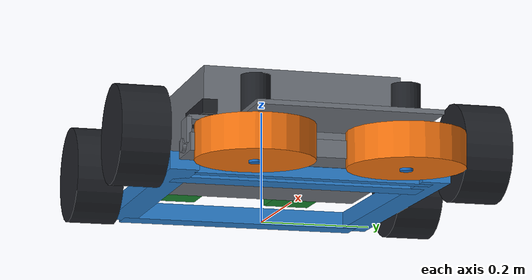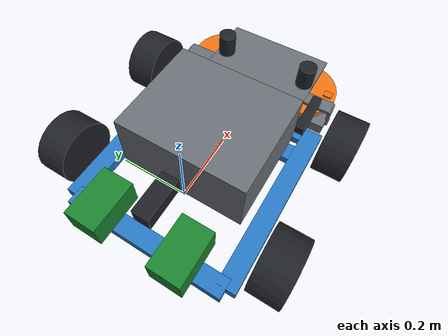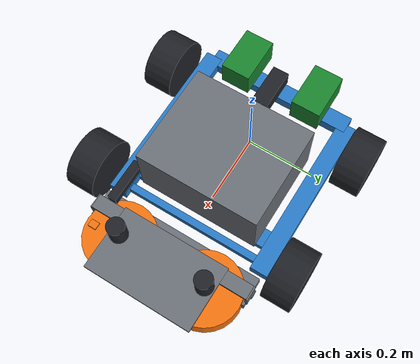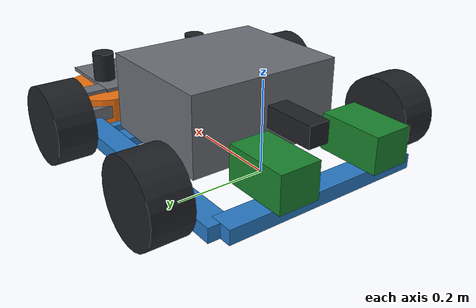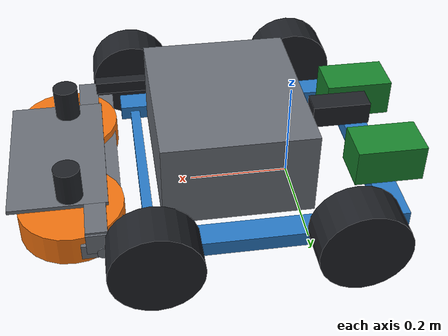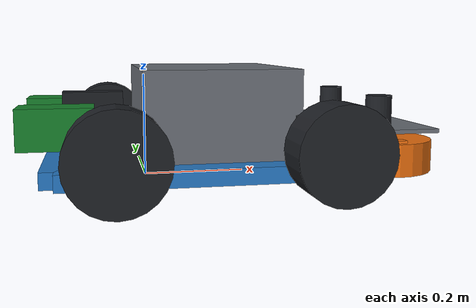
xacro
<?xml version="1.0" encoding="UTF-8"?>
<!--
  Phase-2 isolated v3 bench. PRE-EXECUTION ONLY.
  Do not include this file from the production tennis_robot description.
  Expansion / ROS / Gazebo execution requires explicit user approval.
-->
<robot name="phase2_v3_isolated_bench" xmlns:xacro="http://www.ros.org/wiki/xacro">
  <xacro:include filename="../../ros2_ws/src/tennis_robot/urdf/components/flywheel_launcher_module.urdf.xacro"/>
  <xacro:include filename="cad_v3_flywheel_launcher_module.urdf.xacro"/>

  <xacro:arg name="sim_mode" default="true"/>
  <xacro:arg name="drive_test_ballast" default="false"/>
  <xacro:arg name="basket_full_45" default="false"/>
  <xacro:arg name="tilt_angle_rad" default="-0.052359877560"/>
  <xacro:arg name="controllers_config" default="engineering/shared-flywheel-isolated-bench/v3_controllers.yaml"/>
  <xacro:arg name="ground_mu" default="0.7"/>
  <xacro:arg name="five_a_enabled" default="false"/>
  <xacro:arg name="five_a_case" default="empty"/>
  <xacro:arg name="five_a_output_csv" default="/tmp/v3_5a.csv"/>
  <xacro:arg name="five_b_enabled" default="false"/>
  <xacro:arg name="validation_fixtures_enabled" default="$(arg five_b_enabled)"/>
  <xacro:arg name="five_b_case" default="empty"/>
  <xacro:arg name="five_b_dynamic_tilt" default="true"/>
  <xacro:arg name="five_b_output_csv" default="/tmp/v3_5b.csv"/>
  <xacro:arg name="five_b_contacts_csv" default="/tmp/v3_5b_contacts.csv"/>
  <xacro:arg name="five_c_enabled" default="false"/>
  <xacro:arg name="five_c_cheek_variant" default="narrow"/>
  <xacro:arg name="five_c_design" default="legacy"/>
  <xacro:arg name="five_c_p244_ramp_enabled" default="false"/>
  <!-- P2-47 dependent basket/entry comparison.  p246_open preserves the
       accepted P2-46 model; the other values are isolated-bench concepts. -->
  <xacro:arg name="five_c_basket_variant" default="p246_open"/>
  <!-- P2-45 selected reference: 8 mm underside clearance.  The explicit
       3/5/8 mm validation sweep remains reproducible through this argument. -->
  <xacro:arg name="five_c_ramp_tip_clearance" default="0.008"/>
  <xacro:arg name="base_mass" default="10.0"/>
  <xacro:arg name="base_com_x" default="0.100"/>
  <xacro:arg name="base_com_z" default="0.120"/>
  <xacro:arg name="base_ixx" default="0.62"/>
  <xacro:arg name="base_iyy" default="0.45"/>
  <xacro:arg name="base_izz" default="0.86"/>
  <xacro:arg name="base_ixz" default="-0.05"/>
  <xacro:arg name="drive_wheel_mass" default="0.001"/>
  <xacro:arg name="drive_wheel_ixx" default="0.0015"/>
  <xacro:arg name="drive_wheel_iyy" default="0.0025"/>
  <xacro:arg name="drive_wheel_izz" default="0.0015"/>
  <!-- R remains unmeasured under load.  85 mm is a reference point inside
       the 82..90 mm sweep, not a released nominal radius. -->
  <xacro:arg name="drive_wheel_radius" default="0.085"/>
  <xacro:arg name="drive_axle_above_mount_foot" default="0.029"/>
  <xacro:arg name="drive_axle_z" default="0.081"/>
  <xacro:arg name="turns_only" default="false"/>
  <xacro:arg name="retention_only" default="false"/>
  <xacro:arg name="yaw_feedback_enabled" default="false"/>
  <xacro:arg name="yaw_kp" default="2.0"/>
  <xacro:arg name="yaw_ki" default="0.8"/>
  <xacro:arg name="yaw_correction_limit" default="1.5"/>
  <xacro:arg name="tilt_hold_enabled" default="false"/>

  <material name="frame_blue"><color rgba="0.16 0.48 0.78 1"/></material>
  <material name="mount_gray"><color rgba="0.42 0.44 0.47 1"/></material>
  <material name="safety_orange"><color rgba="0.95 0.45 0.06 1"/></material>
  <material name="electronics_blue"><color rgba="0.10 0.42 0.76 1"/></material>
  <material name="anthracite"><color rgba="0.12 0.13 0.15 1"/></material>
  <material name="battery_green"><color rgba="0.10 0.52 0.18 1"/></material>
  <xacro:property name="p247_basket_variant" value="$(arg five_c_basket_variant)"/>

  <xacro:macro name="box_inertia" params="mass x y z">
    <inertial>
      <mass value="${mass}"/>
      <inertia ixx="${mass*(y*y+z*z)/12}" ixy="0" ixz="0"
               iyy="${mass*(x*x+z*z)/12}" iyz="0"
               izz="${mass*(x*x+y*y)/12}"/>
    </inertial>
  </xacro:macro>

  <xacro:macro name="p244_ramp_segment" params="index xf zf xr zr width">
    <xacro:property name="seg_dx" value="${xf-xr}"/>
    <xacro:property name="seg_dz" value="${zr-zf}"/>
    <xacro:property name="seg_len" value="${sqrt(seg_dx*seg_dx+seg_dz*seg_dz)}"/>
    <xacro:property name="seg_pitch" value="${atan2(seg_dz,seg_dx)}"/>
    <collision name="intake_fixed_ramp_floor_${index}_col"><origin xyz="${(xf+xr)/2} 0 ${(zf+zr)/2-0.001} " rpy="0 ${seg_pitch} 0"/><geometry><box size="${seg_len+0.004} ${width} 0.002"/></geometry></collision>
    <visual name="intake_fixed_ramp_floor_${index}_vis"><origin xyz="${(xf+xr)/2} 0 ${(zf+zr)/2-0.001}" rpy="0 ${seg_pitch} 0"/><geometry><box size="${seg_len+0.004} ${width} 0.002"/></geometry><material name="frame_blue"/></visual>
  </xacro:macro>
  <xacro:macro name="p244_ramp_rail" params="index side xf zf xr zr width">
    <xacro:property name="rail_dx" value="${xf-xr}"/>
    <xacro:property name="rail_dz" value="${zr-zf}"/>
    <xacro:property name="rail_len" value="${sqrt(rail_dx*rail_dx+rail_dz*rail_dz)}"/>
    <xacro:property name="rail_pitch" value="${atan2(rail_dz,rail_dx)}"/>
    <collision name="intake_fixed_ramp_rail_${index}_${side}_col"><origin xyz="${(xf+xr)/2} ${side*(width/2+0.0015)} ${(zf+zr)/2+0.010}" rpy="0 ${rail_pitch} 0"/><geometry><box size="${rail_len+0.004} 0.003 0.020"/></geometry></collision>
    <visual name="intake_fixed_ramp_rail_${index}_${side}_vis"><origin xyz="${(xf+xr)/2} ${side*(width/2+0.0015)} ${(zf+zr)/2+0.010}" rpy="0 ${rail_pitch} 0"/><geometry><box size="${rail_len+0.004} 0.003 0.020"/></geometry><material name="electronics_blue"/></visual>
  </xacro:macro>

  <link name="base_link">
    <inertial>
      <origin xyz="$(arg base_com_x) 0 $(arg base_com_z)" rpy="0 0 0"/>
      <mass value="$(arg base_mass)"/>
      <inertia ixx="$(arg base_ixx)" ixy="0" ixz="$(arg base_ixz)" iyy="$(arg base_iyy)" iyz="0" izz="$(arg base_izz)"/>
    </inertial>
    <visual name="left_rail"><origin xyz="0.0825 0.220 0.037"/><geometry><box size="0.495 0.050 0.030"/></geometry><material name="frame_blue"/></visual>
    <visual name="right_rail"><origin xyz="0.0825 -0.220 0.037"/><geometry><box size="0.495 0.050 0.030"/></geometry><material name="frame_blue"/></visual>
    <visual name="rear_crossbar"><origin xyz="-0.165 0 0.037"/><geometry><box size="0.050 0.440 0.030"/></geometry><material name="frame_blue"/></visual>
    <visual name="x240_crossbar"><origin xyz="0.240 0 0.032"/><geometry><box size="0.050 0.440 0.020"/></geometry><material name="frame_blue"/></visual>
    <visual name="x300_crossbar"><origin xyz="0.300 0 0.032"/><geometry><box size="0.020 0.440 0.020"/></geometry><material name="frame_blue"/></visual>
    <xacro:unless value="$(arg validation_fixtures_enabled)">
      <collision name="base_envelope"><origin xyz="0.0825 0 0.057"/><geometry><box size="0.495 0.440 0.070"/></geometry></collision>
    </xacro:unless>
    <xacro:if value="$(arg validation_fixtures_enabled)">
      <collision name="chassis_left_rail_col"><origin xyz="0.0825 0.220 0.037"/><geometry><box size="0.495 0.050 0.030"/></geometry></collision>
      <collision name="chassis_right_rail_col"><origin xyz="0.0825 -0.220 0.037"/><geometry><box size="0.495 0.050 0.030"/></geometry></collision>
      <collision name="chassis_rear_crossbar_col"><origin xyz="-0.165 0 0.037"/><geometry><box size="0.050 0.440 0.030"/></geometry></collision>
      <collision name="chassis_x240_crossbar_col"><origin xyz="0.240 0 0.032"/><geometry><box size="0.050 0.440 0.020"/></geometry></collision>
      <collision name="chassis_x300_crossbar_col"><origin xyz="0.300 0 0.032"/><geometry><box size="0.020 0.440 0.020"/></geometry></collision>
      <collision name="fixture_arch_left_leg_col"><origin xyz="0.318 0.220 0.1485"/><geometry><box size="0.030 0.050 0.193"/></geometry></collision>
      <collision name="fixture_arch_right_leg_col"><origin xyz="0.318 -0.220 0.1485"/><geometry><box size="0.030 0.050 0.193"/></geometry></collision>
      <collision name="fixture_arch_left_dogleg_col"><origin xyz="0.324 0.220 0.245"/><geometry><box size="0.042 0.030 0.020"/></geometry></collision>
      <collision name="fixture_arch_right_dogleg_col"><origin xyz="0.324 -0.220 0.245"/><geometry><box size="0.042 0.030 0.020"/></geometry></collision>
      <collision name="fixture_arch_x330_crossmember_col"><origin xyz="0.330 0 0.245"/><geometry><box size="0.050 0.440 0.030"/></geometry></collision>
      <collision name="fixture_lidar_body_col"><origin xyz="0.330 0 0.374"/><geometry><cylinder radius="0.038" length="0.032"/></geometry></collision>
      <collision name="fixture_camera_body_col"><origin xyz="0.350 0 0.305" rpy="0 0.872665 0"/><geometry><box size="0.082 0.032 0.028"/></geometry></collision>
    </xacro:if>
    <xacro:if value="$(arg five_c_p244_ramp_enabled)">
      <xacro:property name="p245_clearance" value="${float('$(arg five_c_ramp_tip_clearance)')}"/>
      <xacro:property name="p245_delta" value="${p245_clearance-0.001}"/>
      <xacro:property name="p245_z0" value="${p245_clearance+0.002}"/>
      <xacro:property name="p245_z1" value="${0.008+0.75*p245_delta}"/>
      <xacro:property name="p245_z2" value="${0.021+0.35*p245_delta}"/>
      <xacro:unless value="${p247_basket_variant == 'p249_r125' or p247_basket_variant == 'p249_r125_rails' or p247_basket_variant.startswith('p251_ski_')}">
        <xacro:p244_ramp_segment index="0" xf="0.402" zf="${p245_z0}" xr="0.377" zr="${p245_z1}" width="0.061"/>
        <xacro:p244_ramp_segment index="1" xf="0.377" zf="${p245_z1}" xr="0.352" zr="${p245_z2}" width="0.072"/>
      </xacro:unless>
      <xacro:unless value="${p247_basket_variant == 'high_hood' or p247_basket_variant == 'tall_open_drop' or p247_basket_variant == 'p249_separated' or p247_basket_variant == 'p249_r125' or p247_basket_variant == 'p249_r125_rails' or p247_basket_variant.startswith('p251_ski_')}">
        <xacro:p244_ramp_segment index="2" xf="0.352" zf="${p245_z2}" xr="0.328" zr="0.036" width="0.082"/>
        <xacro:p244_ramp_segment index="3" xf="0.328" zf="0.036" xr="0.315" zr="0.046" width="0.088"/>
        <xacro:p244_ramp_segment index="4" xf="0.315" zf="0.046" xr="0.305" zr="0.052" width="0.0915"/>
        <xacro:unless value="${p247_basket_variant == 'lip_cover'}">
          <xacro:p244_ramp_segment index="5" xf="0.305" zf="0.052" xr="0.298" zr="0.054" width="0.094"/>
          <xacro:p244_ramp_segment index="6" xf="0.298" zf="0.054" xr="0.278" zr="0.054" width="0.0955"/>
        </xacro:unless>
        <!-- The fixed lip needs the same lesson as basket-v2: the incoming
             ball must be lifted over it rather than asked to climb a wall. -->
      <xacro:if value="${p247_basket_variant == 'lip_cover'}">
          <xacro:p244_ramp_segment index="5l" xf="0.305" zf="0.052" xr="0.290" zr="0.056" width="0.094"/>
          <xacro:p244_ramp_segment index="6l" xf="0.290" zf="0.056" xr="0.278" zr="0.060" width="0.0955"/>
        </xacro:if>
      </xacro:unless>
      <!-- Variant A: a short controlled-rise profile presents the ball above
           the floor pile before it reaches the hooded basket entrance. -->
      <xacro:if value="${p247_basket_variant == 'high_hood'}">
        <xacro:p244_ramp_segment index="2h" xf="0.352" zf="${p245_z2}" xr="0.330" zr="0.030" width="0.082"/>
        <xacro:p244_ramp_segment index="3h" xf="0.330" zf="0.030" xr="0.305" zr="0.040" width="0.088"/>
        <xacro:p244_ramp_segment index="4h" xf="0.305" zf="0.040" xr="0.280" zr="0.052" width="0.094"/>
        <xacro:p244_ramp_segment index="5h" xf="0.280" zf="0.052" xr="0.250" zr="0.065" width="0.096"/>
      </xacro:if>
      <xacro:if value="${p247_basket_variant == 'tall_open_drop'}">
        <xacro:p244_ramp_segment index="2t" xf="0.352" zf="${p245_z2}" xr="0.330" zr="0.031" width="0.082"/>
        <xacro:p244_ramp_segment index="3t" xf="0.330" zf="0.031" xr="0.305" zr="0.048" width="0.086"/>
        <xacro:p244_ramp_segment index="4t" xf="0.305" zf="0.048" xr="0.280" zr="0.069" width="0.090"/>
        <xacro:p244_ramp_segment index="5t" xf="0.280" zf="0.069" xr="0.250" zr="0.095" width="0.094"/>
        <xacro:p244_ramp_segment index="6t" xf="0.250" zf="0.095" xr="0.220" zr="0.121" width="0.096"/>
        <xacro:p244_ramp_segment index="7t" xf="0.220" zf="0.121" xr="0.190" zr="0.147" width="0.096"/>
        <xacro:p244_ramp_segment index="8t" xf="0.190" zf="0.147" xr="0.160" zr="0.173" width="0.096"/>
        <xacro:p244_ramp_segment index="9t" xf="0.160" zf="0.173" xr="0.130" zr="0.199" width="0.096"/>
        <xacro:p244_ramp_segment index="10t" xf="0.130" zf="0.199" xr="0.110" zr="0.218" width="0.096"/>
        <xacro:p244_ramp_segment index="11t" xf="0.110" zf="0.218" xr="0.090" zr="0.247" width="0.096"/>
        <xacro:p244_ramp_rail index="2t" side="1" xf="0.352" zf="${p245_z2}" xr="0.330" zr="0.031" width="0.082"/>
        <xacro:p244_ramp_rail index="2t" side="-1" xf="0.352" zf="${p245_z2}" xr="0.330" zr="0.031" width="0.082"/>
        <xacro:p244_ramp_rail index="7t" side="1" xf="0.220" zf="0.121" xr="0.190" zr="0.147" width="0.096"/>
        <xacro:p244_ramp_rail index="7t" side="-1" xf="0.220" zf="0.121" xr="0.190" zr="0.147" width="0.096"/>
        <xacro:p244_ramp_rail index="11t" side="1" xf="0.110" zf="0.218" xr="0.090" zr="0.247" width="0.096"/>
        <xacro:p244_ramp_rail index="11t" side="-1" xf="0.110" zf="0.218" xr="0.090" zr="0.247" width="0.096"/>
      </xacro:if>
      <xacro:if value="${p247_basket_variant == 'p249_separated'}">
        <xacro:p244_ramp_segment index="2p249" xf="0.352" zf="${p245_z2}" xr="0.3247" zr="0.0451" width="0.078"/>
        <xacro:p244_ramp_segment index="3p249" xf="0.3247" zf="0.0451" xr="0.285" zr="0.065" width="0.080"/>
        <xacro:p244_ramp_segment index="4p249" xf="0.285" zf="0.065" xr="0.245" zr="0.105" width="0.080"/>
        <xacro:p244_ramp_segment index="5p249" xf="0.245" zf="0.105" xr="0.205" zr="0.150" width="0.080"/>
        <xacro:p244_ramp_segment index="6p249" xf="0.205" zf="0.150" xr="0.155" zr="0.215" width="0.080"/>
        <xacro:p244_ramp_segment index="7p249" xf="0.155" zf="0.215" xr="0.100" zr="0.285" width="0.080"/>
        <xacro:p244_ramp_rail index="2p249" side="1" xf="0.352" zf="${p245_z2}" xr="0.3247" zr="0.0451" width="0.078"/>
        <xacro:p244_ramp_rail index="2p249" side="-1" xf="0.352" zf="${p245_z2}" xr="0.3247" zr="0.0451" width="0.078"/>
        <xacro:p244_ramp_rail index="4p249" side="1" xf="0.285" zf="0.065" xr="0.245" zr="0.105" width="0.080"/>
        <xacro:p244_ramp_rail index="4p249" side="-1" xf="0.285" zf="0.065" xr="0.245" zr="0.105" width="0.080"/>
        <xacro:p244_ramp_rail index="7p249" side="1" xf="0.155" zf="0.215" xr="0.100" zr="0.285" width="0.080"/>
        <xacro:p244_ramp_rail index="7p249" side="-1" xf="0.155" zf="0.215" xr="0.100" zr="0.285" width="0.080"/>
      </xacro:if>
      <!-- P2-50 r2: R=125 mm circular lower transition, chorded every 8 deg,
           tangent to the approximately 48 deg climb toward sill Z285. -->
      <xacro:if value="${p247_basket_variant == 'p249_r125' or p247_basket_variant == 'p249_r125_rails'}">
        <xacro:p244_ramp_segment index="0r125" xf="0.402000" zf="0.010000" xr="0.384603" zr="0.011216" width="0.061"/>
        <xacro:p244_ramp_segment index="1r125" xf="0.384603" zf="0.011216" xr="0.367545" zr="0.014842" width="0.068"/>
        <xacro:p244_ramp_segment index="2r125" xf="0.367545" zf="0.014842" xr="0.351158" zr="0.020807" width="0.074"/>
        <xacro:p244_ramp_segment index="3r125" xf="0.351158" zf="0.020807" xr="0.335760" zr="0.028994" width="0.078"/>
        <xacro:p244_ramp_segment index="4r125" xf="0.335760" zf="0.028994" xr="0.321652" zr="0.039244" width="0.080"/>
        <xacro:p244_ramp_segment index="5r125" xf="0.321652" zf="0.039244" xr="0.309107" zr="0.051359" width="0.080"/>
        <xacro:p244_ramp_segment index="6r125" xf="0.309107" zf="0.051359" xr="0.270" zr="0.09510" width="0.080"/>
        <xacro:p244_ramp_segment index="7r125" xf="0.270" zf="0.09510" xr="0.220" zr="0.15105" width="0.080"/>
        <xacro:p244_ramp_segment index="8r125" xf="0.220" zf="0.15105" xr="0.170" zr="0.20700" width="0.080"/>
        <xacro:p244_ramp_segment index="9r125" xf="0.170" zf="0.20700" xr="0.120" zr="0.26295" width="0.080"/>
        <xacro:p244_ramp_segment index="10r125" xf="0.120" zf="0.26295" xr="0.100" zr="0.285" width="0.080"/>
        <xacro:if value="${p247_basket_variant == 'p249_r125'}">
          <xacro:p244_ramp_rail index="2r125" side="1" xf="0.367545" zf="0.014842" xr="0.351158" zr="0.020807" width="0.074"/>
          <xacro:p244_ramp_rail index="2r125" side="-1" xf="0.367545" zf="0.014842" xr="0.351158" zr="0.020807" width="0.074"/>
          <xacro:p244_ramp_rail index="6r125" side="1" xf="0.309107" zf="0.051359" xr="0.270" zr="0.09510" width="0.080"/>
          <xacro:p244_ramp_rail index="6r125" side="-1" xf="0.309107" zf="0.051359" xr="0.270" zr="0.09510" width="0.080"/>
          <xacro:p244_ramp_rail index="10r125" side="1" xf="0.120" zf="0.26295" xr="0.100" zr="0.285" width="0.080"/>
          <xacro:p244_ramp_rail index="10r125" side="-1" xf="0.120" zf="0.26295" xr="0.100" zr="0.285" width="0.080"/>
        </xacro:if>
        <xacro:if value="${p247_basket_variant == 'p249_r125_rails'}">
          <xacro:p244_ramp_rail index="0r125" side="1" xf="0.402000" zf="0.010000" xr="0.384603" zr="0.011216" width="0.061"/>
          <xacro:p244_ramp_rail index="0r125" side="-1" xf="0.402000" zf="0.010000" xr="0.384603" zr="0.011216" width="0.061"/>
          <xacro:p244_ramp_rail index="1r125" side="1" xf="0.384603" zf="0.011216" xr="0.367545" zr="0.014842" width="0.068"/>
          <xacro:p244_ramp_rail index="1r125" side="-1" xf="0.384603" zf="0.011216" xr="0.367545" zr="0.014842" width="0.068"/>
          <xacro:p244_ramp_rail index="2r125" side="1" xf="0.367545" zf="0.014842" xr="0.351158" zr="0.020807" width="0.074"/>
          <xacro:p244_ramp_rail index="2r125" side="-1" xf="0.367545" zf="0.014842" xr="0.351158" zr="0.020807" width="0.074"/>
          <xacro:p244_ramp_rail index="3r125" side="1" xf="0.351158" zf="0.020807" xr="0.335760" zr="0.028994" width="0.078"/>
          <xacro:p244_ramp_rail index="3r125" side="-1" xf="0.351158" zf="0.020807" xr="0.335760" zr="0.028994" width="0.078"/>
          <xacro:p244_ramp_rail index="4r125" side="1" xf="0.335760" zf="0.028994" xr="0.321652" zr="0.039244" width="0.080"/>
          <xacro:p244_ramp_rail index="4r125" side="-1" xf="0.335760" zf="0.028994" xr="0.321652" zr="0.039244" width="0.080"/>
          <xacro:p244_ramp_rail index="5r125" side="1" xf="0.321652" zf="0.039244" xr="0.309107" zr="0.051359" width="0.080"/>
          <xacro:p244_ramp_rail index="5r125" side="-1" xf="0.321652" zf="0.039244" xr="0.309107" zr="0.051359" width="0.080"/>
          <xacro:p244_ramp_rail index="6r125" side="1" xf="0.309107" zf="0.051359" xr="0.270" zr="0.09510" width="0.080"/>
          <xacro:p244_ramp_rail index="6r125" side="-1" xf="0.309107" zf="0.051359" xr="0.270" zr="0.09510" width="0.080"/>
          <xacro:p244_ramp_rail index="7r125" side="1" xf="0.270" zf="0.09510" xr="0.220" zr="0.15105" width="0.080"/>
          <xacro:p244_ramp_rail index="7r125" side="-1" xf="0.270" zf="0.09510" xr="0.220" zr="0.15105" width="0.080"/>
          <xacro:p244_ramp_rail index="8r125" side="1" xf="0.220" zf="0.15105" xr="0.170" zr="0.20700" width="0.080"/>
          <xacro:p244_ramp_rail index="8r125" side="-1" xf="0.220" zf="0.15105" xr="0.170" zr="0.20700" width="0.080"/>
          <xacro:p244_ramp_rail index="9r125" side="1" xf="0.170" zf="0.20700" xr="0.120" zr="0.26295" width="0.080"/>
          <xacro:p244_ramp_rail index="9r125" side="-1" xf="0.170" zf="0.20700" xr="0.120" zr="0.26295" width="0.080"/>
          <xacro:p244_ramp_rail index="10r125" side="1" xf="0.120" zf="0.26295" xr="0.100" zr="0.285" width="0.080"/>
          <xacro:p244_ramp_rail index="10r125" side="-1" xf="0.120" zf="0.26295" xr="0.100" zr="0.285" width="0.080"/>
        </xacro:if>
      </xacro:if>
      <xacro:if value="${p247_basket_variant.startswith('p251_ski_')}">
        <xacro:property name="p251_exit_angle" value="${int(p247_basket_variant.rsplit('_',1)[1])}"/>
        <xacro:p244_ramp_segment index="p251_flat" xf="0.435000" zf="0.010000" xr="0.383000" zr="0.010000" width="0.061"/>
        <xacro:p244_ramp_rail index="p251_flat" side="1" xf="0.435000" zf="0.010000" xr="0.383000" zr="0.010000" width="0.061"/>
        <xacro:p244_ramp_rail index="p251_flat" side="-1" xf="0.435000" zf="0.010000" xr="0.383000" zr="0.010000" width="0.061"/>
        <xacro:p244_ramp_segment index="p251_05" xf="0.383000" zf="0.010000" xr="0.376463" zr="0.010285" width="0.066"/>
        <xacro:p244_ramp_segment index="p251_10" xf="0.376463" zf="0.010285" xr="0.369976" zr="0.011139" width="0.072"/>
        <xacro:p244_ramp_segment index="p251_15" xf="0.369976" zf="0.011139" xr="0.363589" zr="0.012556" width="0.078"/>
        <xacro:p244_ramp_segment index="p251_20" xf="0.363589" zf="0.012556" xr="0.357348" zr="0.014523" width="0.084"/>
        <xacro:p244_ramp_segment index="p251_25" xf="0.357348" zf="0.014523" xr="0.351304" zr="0.017027" width="0.090"/>
        <xacro:p244_ramp_segment index="p251_30" xf="0.351304" zf="0.017027" xr="0.345500" zr="0.020048" width="0.094"/>
        <xacro:p244_ramp_segment index="p251_35" xf="0.345500" zf="0.020048" xr="0.339982" zr="0.023564" width="0.094"/>
        <xacro:if value="${p251_exit_angle >= 40}"><xacro:p244_ramp_segment index="p251_40" xf="0.339982" zf="0.023564" xr="0.334791" zr="0.027547" width="0.094"/></xacro:if>
        <xacro:if value="${p251_exit_angle >= 42}"><xacro:p244_ramp_segment index="p251_42" xf="0.334791" zf="0.027547" xr="0.332815" zr="0.029264" width="0.094"/></xacro:if>
        <xacro:if value="${p251_exit_angle >= 45}"><xacro:p244_ramp_segment index="p251_45" xf="0.332815" zf="0.029264" xr="0.329967" zr="0.031967" width="0.094"/></xacro:if>
        <xacro:if value="${p251_exit_angle >= 50}"><xacro:p244_ramp_segment index="p251_50" xf="0.329967" zf="0.031967" xr="0.325547" zr="0.036791" width="0.094"/></xacro:if>
        <xacro:if value="${p251_exit_angle >= 55}"><xacro:p244_ramp_segment index="p251_55" xf="0.325547" zf="0.036791" xr="0.321564" zr="0.041982" width="0.094"/></xacro:if>
        <xacro:if value="${p251_exit_angle >= 60}"><xacro:p244_ramp_segment index="p251_60" xf="0.321564" zf="0.041982" xr="0.318048" zr="0.047500" width="0.094"/></xacro:if>
        <xacro:p244_ramp_rail index="p251_05" side="1" xf="0.383000" zf="0.010000" xr="0.376463" zr="0.010285" width="0.066"/>
        <xacro:p244_ramp_rail index="p251_05" side="-1" xf="0.383000" zf="0.010000" xr="0.376463" zr="0.010285" width="0.066"/>
        <xacro:p244_ramp_rail index="p251_10" side="1" xf="0.376463" zf="0.010285" xr="0.369976" zr="0.011139" width="0.072"/>
        <xacro:p244_ramp_rail index="p251_10" side="-1" xf="0.376463" zf="0.010285" xr="0.369976" zr="0.011139" width="0.072"/>
        <xacro:p244_ramp_rail index="p251_15" side="1" xf="0.369976" zf="0.011139" xr="0.363589" zr="0.012556" width="0.078"/>
        <xacro:p244_ramp_rail index="p251_15" side="-1" xf="0.369976" zf="0.011139" xr="0.363589" zr="0.012556" width="0.078"/>
        <xacro:p244_ramp_rail index="p251_20" side="1" xf="0.363589" zf="0.012556" xr="0.357348" zr="0.014523" width="0.084"/>
        <xacro:p244_ramp_rail index="p251_20" side="-1" xf="0.363589" zf="0.012556" xr="0.357348" zr="0.014523" width="0.084"/>
        <xacro:p244_ramp_rail index="p251_25" side="1" xf="0.357348" zf="0.014523" xr="0.351304" zr="0.017027" width="0.090"/>
        <xacro:p244_ramp_rail index="p251_25" side="-1" xf="0.357348" zf="0.014523" xr="0.351304" zr="0.017027" width="0.090"/>
        <xacro:p244_ramp_rail index="p251_30" side="1" xf="0.351304" zf="0.017027" xr="0.345500" zr="0.020048" width="0.094"/>
        <xacro:p244_ramp_rail index="p251_30" side="-1" xf="0.351304" zf="0.017027" xr="0.345500" zr="0.020048" width="0.094"/>
        <xacro:p244_ramp_rail index="p251_35" side="1" xf="0.345500" zf="0.020048" xr="0.339982" zr="0.023564" width="0.094"/>
        <xacro:p244_ramp_rail index="p251_35" side="-1" xf="0.345500" zf="0.020048" xr="0.339982" zr="0.023564" width="0.094"/>
        <xacro:if value="${p251_exit_angle >= 40}"><xacro:p244_ramp_rail index="p251_40" side="1" xf="0.339982" zf="0.023564" xr="0.334791" zr="0.027547" width="0.094"/><xacro:p244_ramp_rail index="p251_40" side="-1" xf="0.339982" zf="0.023564" xr="0.334791" zr="0.027547" width="0.094"/></xacro:if>
        <xacro:if value="${p251_exit_angle >= 42}"><xacro:p244_ramp_rail index="p251_42" side="1" xf="0.334791" zf="0.027547" xr="0.332815" zr="0.029264" width="0.094"/><xacro:p244_ramp_rail index="p251_42" side="-1" xf="0.334791" zf="0.027547" xr="0.332815" zr="0.029264" width="0.094"/></xacro:if>
        <xacro:if value="${p251_exit_angle >= 45}"><xacro:p244_ramp_rail index="p251_45" side="1" xf="0.332815" zf="0.029264" xr="0.329967" zr="0.031967" width="0.094"/><xacro:p244_ramp_rail index="p251_45" side="-1" xf="0.332815" zf="0.029264" xr="0.329967" zr="0.031967" width="0.094"/></xacro:if>
        <xacro:if value="${p251_exit_angle >= 50}"><xacro:p244_ramp_rail index="p251_50" side="1" xf="0.329967" zf="0.031967" xr="0.325547" zr="0.036791" width="0.094"/><xacro:p244_ramp_rail index="p251_50" side="-1" xf="0.329967" zf="0.031967" xr="0.325547" zr="0.036791" width="0.094"/></xacro:if>
        <xacro:if value="${p251_exit_angle >= 55}"><xacro:p244_ramp_rail index="p251_55" side="1" xf="0.325547" zf="0.036791" xr="0.321564" zr="0.041982" width="0.094"/><xacro:p244_ramp_rail index="p251_55" side="-1" xf="0.325547" zf="0.036791" xr="0.321564" zr="0.041982" width="0.094"/></xacro:if>
        <xacro:if value="${p251_exit_angle >= 60}"><xacro:p244_ramp_rail index="p251_60" side="1" xf="0.321564" zf="0.041982" xr="0.318048" zr="0.047500" width="0.094"/><xacro:p244_ramp_rail index="p251_60" side="-1" xf="0.321564" zf="0.041982" xr="0.318048" zr="0.047500" width="0.094"/></xacro:if>
      </xacro:if>
      <xacro:unless value="${p247_basket_variant == 'tall_open_drop' or p247_basket_variant == 'p249_separated' or p247_basket_variant == 'p249_r125' or p247_basket_variant == 'p249_r125_rails' or p247_basket_variant.startswith('p251_ski_')}">
        <xacro:p244_ramp_rail index="2" side="1" xf="0.352" zf="${p245_z2}" xr="0.328" zr="0.036" width="0.082"/>
        <xacro:p244_ramp_rail index="2" side="-1" xf="0.352" zf="${p245_z2}" xr="0.328" zr="0.036" width="0.082"/>
        <xacro:p244_ramp_rail index="3" side="1" xf="0.328" zf="0.036" xr="0.315" zr="0.046" width="0.088"/>
        <xacro:p244_ramp_rail index="3" side="-1" xf="0.328" zf="0.036" xr="0.315" zr="0.046" width="0.088"/>
        <xacro:p244_ramp_rail index="4" side="1" xf="0.315" zf="0.046" xr="0.305" zr="0.052" width="0.0915"/>
        <xacro:p244_ramp_rail index="4" side="-1" xf="0.315" zf="0.046" xr="0.305" zr="0.052" width="0.0915"/>
        <xacro:p244_ramp_rail index="5" side="1" xf="0.305" zf="0.052" xr="0.298" zr="0.054" width="0.094"/>
        <xacro:p244_ramp_rail index="5" side="-1" xf="0.305" zf="0.052" xr="0.298" zr="0.054" width="0.094"/>
        <xacro:p244_ramp_rail index="6" side="1" xf="0.298" zf="0.054" xr="0.278" zr="0.054" width="0.0955"/>
        <xacro:p244_ramp_rail index="6" side="-1" xf="0.298" zf="0.054" xr="0.278" zr="0.054" width="0.0955"/>
      </xacro:unless>
      <!-- The original P2-44 flap remains only in the preserved open entry.
           Every P2-47 candidate supplies its own hood/flap and must not stack
           a second obstruction in the same volume. -->
      <xacro:if value="${p247_basket_variant == 'p246_open'}">
        <collision name="intake_fixed_ramp_flap_col"><origin xyz="0.296 0 0.128" rpy="0 0.20 0"/><geometry><box size="0.040 0.100 0.002"/></geometry></collision>
        <visual name="intake_fixed_ramp_flap_vis"><origin xyz="0.296 0 0.128" rpy="0 0.20 0"/><geometry><box size="0.040 0.100 0.002"/></geometry><material name="safety_orange"/></visual>
      </xacro:if>
    </xacro:if>
  </link>

  <xacro:macro name="drive_wheel" params="name x y">
    <link name="${name}_wheel_link">
      <inertial><mass value="$(arg drive_wheel_mass)"/><inertia ixx="$(arg drive_wheel_ixx)" ixy="0" ixz="0" iyy="$(arg drive_wheel_iyy)" iyz="0" izz="$(arg drive_wheel_izz)"/></inertial>
      <visual><origin rpy="1.57079632679 0 0"/><geometry><cylinder radius="$(arg drive_wheel_radius)" length="0.083"/></geometry><material name="anthracite"/></visual>
      <collision><origin rpy="1.57079632679 0 0"/><geometry><cylinder radius="$(arg drive_wheel_radius)" length="0.083"/></geometry></collision>
    </link>
    <joint name="${name}_wheel_joint" type="continuous">
      <parent link="base_link"/><child link="${name}_wheel_link"/>
      <origin xyz="${x} ${y} $(arg drive_axle_z)"/><axis xyz="0 1 0"/>
      <limit effort="3.73" velocity="20"/><dynamics damping="0.02" friction="0.02"/>
    </joint>
    <gazebo reference="${name}_wheel_link"><mu1>$(arg ground_mu)</mu1><mu2>$(arg ground_mu)</mu2></gazebo>
  </xacro:macro>
  <xacro:drive_wheel name="rear_left" x="-0.065" y="0.297"/>
  <xacro:drive_wheel name="rear_right" x="-0.065" y="-0.297"/>
  <xacro:drive_wheel name="front_left" x="0.300" y="0.297"/>
  <xacro:drive_wheel name="front_right" x="0.300" y="-0.297"/>

  <link name="basket_support_link">
    <inertial><origin xyz="0.120 0 0.130"/><mass value="1.70"/><inertia ixx="0.030" ixy="0" ixz="0" iyy="0.020" iyz="0" izz="0.040"/></inertial>
    <visual><origin xyz="0.130 0 0.130"/><geometry><box size="0.290 0.350 0.170"/></geometry><material name="mount_gray"/></visual>
    <xacro:unless value="$(arg five_c_p244_ramp_enabled)"><collision><origin xyz="0.130 0 0.130"/><geometry><box size="0.290 0.350 0.170"/></geometry></collision></xacro:unless>
    <xacro:if value="$(arg five_c_p244_ramp_enabled)">
      <xacro:unless value="${p247_basket_variant == 'p249_separated' or p247_basket_variant == 'p249_r125' or p247_basket_variant == 'p249_r125_rails' or p247_basket_variant.startswith('p251_ski_')}">
        <collision name="basket_floor_col"><origin xyz="0.130 0 0.0525"/><geometry><box size="0.290 0.350 0.003"/></geometry></collision>
      </xacro:unless>
      <xacro:if value="${p247_basket_variant == 'p249_separated' or p247_basket_variant == 'p249_r125' or p247_basket_variant == 'p249_r125_rails'}">
        <!-- Only the rear storage floor appears on centreline.  The external
             ramp bay X100..278 is not storage and contains no basket floor. -->
        <collision name="basket_p249_rear_floor_col"><origin xyz="0.0425 0 0.0465" rpy="0 -0.07854 0"/><geometry><box size="0.116 0.344 0.003"/></geometry></collision>
        <collision name="basket_p249_divider_mid_col"><origin xyz="0.100 0 0.2035"/><geometry><box size="0.003 0.100 0.163"/></geometry></collision>
      </xacro:if>
      <xacro:if value="${p247_basket_variant.startswith('p251_ski_')}">
        <collision name="basket_p251_center_floor_col"><origin xyz="0.0965 0 0.056" rpy="0 -0.07854 0"/><geometry><box size="0.363 0.280 0.003"/></geometry></collision>
        <collision name="basket_p251_left_floor_wing_col"><origin xyz="0.1315 0.156 0.051" rpy="0 -0.07854 0"/><geometry><box size="0.293 0.032 0.003"/></geometry></collision>
        <collision name="basket_p251_right_floor_wing_col"><origin xyz="0.1315 -0.156 0.051" rpy="0 -0.07854 0"/><geometry><box size="0.293 0.032 0.003"/></geometry></collision>
        <collision name="basket_p251_rear_backboard_col"><origin xyz="-0.051 0 0.210" rpy="0 0.20944 0"/><geometry><box size="0.004 0.280 0.330"/></geometry></collision>
        <collision name="basket_p251_rear_left_side_col"><origin xyz="-0.050 0.1415 0.190"/><geometry><box size="0.070 0.003 0.290"/></geometry></collision>
        <collision name="basket_p251_rear_right_side_col"><origin xyz="-0.050 -0.1415 0.190"/><geometry><box size="0.070 0.003 0.290"/></geometry></collision>
        <collision name="basket_p251_upper_left_wall_col"><origin xyz="0.1315 0.1735 0.2675"/><geometry><box size="0.293 0.003 0.105"/></geometry></collision>
        <collision name="basket_p251_upper_right_wall_col"><origin xyz="0.1315 -0.1735 0.2675"/><geometry><box size="0.293 0.003 0.105"/></geometry></collision>
        <collision name="basket_p251_front_left_post_col"><origin xyz="0.277 0.156 0.190"/><geometry><box size="0.004 0.032 0.270"/></geometry></collision>
        <collision name="basket_p251_front_right_post_col"><origin xyz="0.277 -0.156 0.190"/><geometry><box size="0.004 0.032 0.270"/></geometry></collision>
      </xacro:if>
      <collision name="basket_left_wall_col"><origin xyz="0.130 0.1735 0.130"/><geometry><box size="0.290 0.003 0.170"/></geometry></collision>
      <collision name="basket_right_wall_col"><origin xyz="0.130 -0.1735 0.130"/><geometry><box size="0.290 0.003 0.170"/></geometry></collision>
      <xacro:unless value="${p247_basket_variant.startswith('p251_ski_')}">
        <collision name="basket_rear_wall_col"><origin xyz="-0.0135 0 0.130"/><geometry><box size="0.003 0.350 0.170"/></geometry></collision>
      </xacro:unless>
      <!-- Front wall retained outside the 96 mm central entrance. -->
      <xacro:unless value="${p247_basket_variant.startswith('p251_ski_')}">
        <collision name="basket_front_left_wall_col"><origin xyz="0.2735 0.1115 0.130"/><geometry><box size="0.003 0.127 0.170"/></geometry></collision>
        <collision name="basket_front_right_wall_col"><origin xyz="0.2735 -0.1115 0.130"/><geometry><box size="0.003 0.127 0.170"/></geometry></collision>
      </xacro:unless>
      <xacro:if value="${p247_basket_variant == 'tall_open_drop'}">
        <collision name="basket_tall_left_wall_col"><origin xyz="0.130 0.1735 0.275"/><geometry><box size="0.290 0.003 0.120"/></geometry></collision>
        <collision name="basket_tall_right_wall_col"><origin xyz="0.130 -0.1735 0.275"/><geometry><box size="0.290 0.003 0.120"/></geometry></collision>
        <collision name="basket_tall_rear_wall_col"><origin xyz="-0.0135 0 0.275"/><geometry><box size="0.003 0.350 0.120"/></geometry></collision>
        <collision name="basket_tall_front_wall_col"><origin xyz="0.2735 0 0.275"/><geometry><box size="0.003 0.350 0.120"/></geometry></collision>
      </xacro:if>
      <xacro:if value="${p247_basket_variant == 'high_hood'}">
        <collision name="basket_high_hood_roof_col"><origin xyz="0.261 0 0.1705" rpy="0 -0.17467 0"/><geometry><box size="0.104 0.110 0.003"/></geometry></collision>
        <collision name="basket_high_hood_left_cheek_col"><origin xyz="0.261 0.0565 0.126"/><geometry><box size="0.104 0.003 0.090"/></geometry></collision>
        <collision name="basket_high_hood_right_cheek_col"><origin xyz="0.261 -0.0565 0.126"/><geometry><box size="0.104 0.003 0.090"/></geometry></collision>
      </xacro:if>
      <xacro:if value="${p247_basket_variant == 'lip_cover'}">
        <collision name="basket_center_retention_lip_col"><origin xyz="0.2725 0 0.057"/><geometry><box size="0.005 0.096 0.006"/></geometry></collision>
        <collision name="basket_light_cover_roof_col"><origin xyz="0.261 0 0.1565" rpy="0 -0.145 0"/><geometry><box size="0.104 0.110 0.003"/></geometry></collision>
        <collision name="basket_light_cover_left_cheek_col"><origin xyz="0.261 0.0565 0.111"/><geometry><box size="0.104 0.003 0.096"/></geometry></collision>
        <collision name="basket_light_cover_right_cheek_col"><origin xyz="0.261 -0.0565 0.111"/><geometry><box size="0.104 0.003 0.096"/></geometry></collision>
      </xacro:if>
    </xacro:if>
  </link>
  <joint name="basket_support_joint" type="fixed"><parent link="base_link"/><child link="basket_support_link"/></joint>

  <xacro:if value="${p247_basket_variant == 'one_way_flap'}">
    <link name="basket_one_way_flap_link">
      <inertial><origin xyz="0 0 -0.0425"/><mass value="0.025"/><inertia ixx="0.000032" ixy="0" ixz="0" iyy="0.000015" iyz="0" izz="0.000018"/></inertial>
      <collision name="basket_one_way_flap_col"><origin xyz="0 0 -0.0425"/><geometry><box size="0.002 0.096 0.085"/></geometry></collision>
      <visual name="basket_one_way_flap_vis"><origin xyz="0 0 -0.0425"/><geometry><box size="0.002 0.096 0.085"/></geometry><material name="safety_orange"/></visual>
    </link>
    <joint name="basket_one_way_flap_joint" type="revolute">
      <parent link="basket_support_link"/><child link="basket_one_way_flap_link"/>
      <origin xyz="0.305 0 0.165"/><axis xyz="0 1 0"/>
      <limit lower="0" upper="1.396263402" effort="20" velocity="12"/>
      <dynamics damping="0.005" friction="0"/>
    </joint>
  </xacro:if>

  <xacro:if value="$(arg basket_full_45)">
    <link name="basket_ball_payload_link">
      <inertial><origin xyz="0.105 0 0.135"/><mass value="2.565"/><inertia ixx="0.028" ixy="0" ixz="0" iyy="0.020" iyz="0" izz="0.042"/></inertial>
      <visual><origin xyz="0.105 0 0.135"/><geometry><box size="0.210 0.310 0.120"/></geometry><material name="safety_orange"/></visual>
      <collision><origin xyz="0.105 0 0.135"/><geometry><box size="0.210 0.310 0.120"/></geometry></collision>
    </link>
    <joint name="basket_ball_payload_joint" type="fixed"><parent link="base_link"/><child link="basket_ball_payload_link"/></joint>
  </xacro:if>

  <xacro:macro name="fixed_payload" params="name mass xyz size material">
    <link name="${name}_link"><xacro:box_inertia mass="${mass}" x="${size[0]}" y="${size[1]}" z="${size[2]}"/><visual><geometry><box size="${size[0]} ${size[1]} ${size[2]}"/></geometry><material name="${material}"/></visual><collision><geometry><box size="${size[0]} ${size[1]} ${size[2]}"/></geometry></collision></link>
    <joint name="${name}_joint" type="fixed"><parent link="base_link"/><child link="${name}_link"/><origin xyz="${xyz}"/></joint>
  </xacro:macro>
  <xacro:fixed_payload name="parkside_left" mass="0.650" xyz="-0.165 0.110 0.112" size="${[0.135,0.085,0.075]}" material="battery_green"/>
  <xacro:fixed_payload name="parkside_right" mass="0.650" xyz="-0.165 -0.110 0.112" size="${[0.135,0.085,0.075]}" material="battery_green"/>
  <xacro:fixed_payload name="ugreen_logic_power" mass="0.309" xyz="-0.100 0 0.145" size="${[0.115,0.046,0.0455]}" material="anthracite"/>

  <link name="launcher_yoke_link">
    <inertial><mass value="0.001"/><inertia ixx="1e-6" ixy="0" ixz="0" iyy="1e-6" iyz="0" izz="1e-6"/></inertial>
    <visual><geometry><box size="0.080 0.468 0.030"/></geometry><material name="mount_gray"/></visual>
  </link>
  <joint name="launcher_tilt_joint" type="revolute">
    <parent link="base_link"/><child link="launcher_yoke_link"/>
    <!-- CAD convention is rotate([0,-theta,0]): positive theta raises the
         front/local +X mouth.  The isolated joint axis must therefore be -Y. -->
    <!-- P2-42 reference adds 2 mm positive-locked downward adjustment so the
         ground-ball centre is 10 mm above the usable W60/r2 tread edge. -->
    <origin xyz="0.387 0 0.049837363636"/><axis xyz="0 -1 0"/>
    <limit lower="-0.052359877560" upper="0.349065850399" effort="150" velocity="0.09"/>
    <dynamics damping="1.5" friction="0.8"/>
  </joint>

  <link name="launcher_endpoint_stops_link">
    <!-- Stop/yoke mass is already inside the 4.60996 kg P2-40 module
         allowance; 1 g here is numerical only and avoids double counting. -->
    <xacro:box_inertia mass="0.001" x="0.060" y="0.080" z="0.030"/>
    <visual name="collection_stop"><origin xyz="0.454907 -0.205 0.048279"/><geometry><box size="0.020 0.024 0.020"/></geometry><material name="safety_orange"/></visual>
    <collision name="collection_stop_col"><origin xyz="0.454907 -0.205 0.048279"/><geometry><box size="0.020 0.024 0.020"/></geometry></collision>
    <visual name="launch_stop"><origin xyz="0.450899 -0.205 0.075095"/><geometry><box size="0.020 0.024 0.020"/></geometry><material name="safety_orange"/></visual>
    <collision name="launch_stop_col"><origin xyz="0.450899 -0.205 0.075095"/><geometry><box size="0.020 0.024 0.020"/></geometry></collision>
  </link>
  <joint name="launcher_endpoint_stops_joint" type="fixed"><parent link="base_link"/><child link="launcher_endpoint_stops_link"/></joint>

  <link name="p16_body_link"><xacro:box_inertia mass="0.095" x="0.120" y="0.025" z="0.025"/><visual><geometry><box size="0.120 0.025 0.025"/></geometry><material name="anthracite"/></visual><collision><geometry><box size="0.120 0.025 0.025"/></geometry></collision></link>
  <joint name="p16_body_joint" type="fixed"><parent link="base_link"/><child link="p16_body_link"/><origin xyz="0.320 -0.190 0.120"/></joint>

  <xacro:unless value="$(arg drive_test_ballast)">
    <xacro:cad_v3_flywheel_launcher_module
        parent="launcher_yoke_link" origin_xyz="0.055 0 0"
        fixed_mass="2.85200336" fixed_com_x="-0.025"
        fixed_ixx="0.03695" fixed_iyy="0.01935"
        fixed_izz="0.04147" fixed_ixz="-0.00023"
        include_intake_guides="$(arg five_c_enabled)"
        cheek_variant="$(arg five_c_cheek_variant)"
        guide_design="$(arg five_c_design)"/>
  </xacro:unless>
  <xacro:if value="$(arg drive_test_ballast)">
    <link name="drive_test_ballast_link">
      <inertial><origin xyz="0.360 0 0.105"/><mass value="5.44788235294"/><inertia ixx="0.013" ixy="0" ixz="0" iyy="0.013" iyz="0" izz="0.020"/></inertial>
      <visual><origin xyz="0.360 0 0.058"/><geometry><box size="0.160 0.480 0.012"/></geometry><material name="mount_gray"/></visual>
      <collision><origin xyz="0.360 0 0.058"/><geometry><box size="0.160 0.480 0.012"/></geometry></collision>
    </link>
    <joint name="drive_test_ballast_joint" type="fixed"><parent link="base_link"/><child link="drive_test_ballast_link"/></joint>
  </xacro:if>

  <ros2_control name="Phase2V3IsolatedSystem" type="system">
    <hardware><xacro:if value="$(arg sim_mode)"><plugin>gz_ros2_control/GazeboSimSystem</plugin></xacro:if></hardware>
    <xacro:macro name="drive_interface" params="joint"><joint name="${joint}"><command_interface name="velocity"/><state_interface name="position"/><state_interface name="velocity"/><state_interface name="effort"/></joint></xacro:macro>
    <xacro:drive_interface joint="rear_left_wheel_joint"/><xacro:drive_interface joint="rear_right_wheel_joint"/>
    <xacro:drive_interface joint="front_left_wheel_joint"/><xacro:drive_interface joint="front_right_wheel_joint"/>
    <joint name="launcher_tilt_joint"><command_interface name="effort"><param name="min">-12.6</param><param name="max">12.6</param></command_interface><state_interface name="position"><param name="initial_value">$(arg tilt_angle_rad)</param></state_interface><state_interface name="velocity"/><state_interface name="effort"/></joint>
    <xacro:unless value="$(arg drive_test_ballast)">
      <joint name="flywheel_left_joint"><command_interface name="effort"><param name="min">-0.62</param><param name="max">0.62</param></command_interface><state_interface name="position"/><state_interface name="velocity"/><state_interface name="effort"/></joint>
      <joint name="flywheel_right_joint"><command_interface name="effort"><param name="min">-0.62</param><param name="max">0.62</param></command_interface><state_interface name="position"/><state_interface name="velocity"/><state_interface name="effort"/></joint>
    </xacro:unless>
  </ros2_control>

  <xacro:if value="$(arg sim_mode)"><gazebo><plugin filename="gz_ros2_control-system" name="gz_ros2_control::GazeboSimROS2ControlPlugin"><parameters>$(arg controllers_config)</parameters></plugin></gazebo></xacro:if>
  <xacro:if value="$(arg five_a_enabled)">
    <gazebo>
      <plugin filename="v3_drive_5a_system" name="phase2_v3::Drive5aSystem">
        <output_csv>$(arg five_a_output_csv)</output_csv>
        <case_name>$(arg five_a_case)</case_name>
        <ground_mu>$(arg ground_mu)</ground_mu>
        <wheel_radius>$(arg drive_wheel_radius)</wheel_radius>
        <half_track>0.297</half_track>
        <torque_limit>3.73</torque_limit>
        <speed_kp>0.80</speed_kp>
        <speed_ki>0.35</speed_ki>
        <sample_period>0.01</sample_period>
        <turns_only>$(arg turns_only)</turns_only>
        <retention_only>$(arg retention_only)</retention_only>
        <yaw_feedback_enabled>$(arg yaw_feedback_enabled)</yaw_feedback_enabled>
        <yaw_kp>$(arg yaw_kp)</yaw_kp>
        <yaw_ki>$(arg yaw_ki)</yaw_ki>
        <yaw_correction_limit>$(arg yaw_correction_limit)</yaw_correction_limit>
        <tilt_hold_enabled>$(arg tilt_hold_enabled)</tilt_hold_enabled>
        <tilt_target_rad>$(arg tilt_angle_rad)</tilt_target_rad>
        <tilt_hold_kp>80.0</tilt_hold_kp>
        <tilt_hold_kd>8.0</tilt_hold_kd>
        <tilt_torque_limit>12.6</tilt_torque_limit>
      </plugin>
    </gazebo>
  </xacro:if>
  <xacro:if value="$(arg five_b_enabled)">
    <gazebo>
      <plugin filename="v3_tilt_5b_system" name="phase2_v3::Tilt5bSystem">
        <output_csv>$(arg five_b_output_csv)</output_csv>
        <contacts_csv>$(arg five_b_contacts_csv)</contacts_csv>
        <case_name>$(arg five_b_case)</case_name>
        <dynamic_tilt>$(arg five_b_dynamic_tilt)</dynamic_tilt>
        <sample_period>0.01</sample_period>
        <dwell_s>3.0</dwell_s>
        <angular_rate_rad_s>0.04836115082</angular_rate_rad_s>
        <tilt_kp>240.0</tilt_kp><tilt_ki>80.0</tilt_ki><tilt_kd>12.0</tilt_kd>
        <tilt_torque_limit>12.6</tilt_torque_limit>
      </plugin>
    </gazebo>
  </xacro:if>
</robot>

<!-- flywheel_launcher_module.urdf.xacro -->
<robot xmlns:xacro="http://www.ros.org/wiki/xacro">
  <xacro:macro name="provisional_candidate_flywheel"
      params="side parent y radius width rotating_mass spin_inertia transverse_inertia com_z max_vel effort">
    <link name="flywheel_${side}_link">
      <inertial>
        <origin xyz="0 0 ${com_z}" rpy="0 0 0"/>
        <mass value="${rotating_mass}"/>
        <inertia ixx="${transverse_inertia}" ixy="0" ixz="0"
                 iyy="${transverse_inertia}" iyz="0" izz="${spin_inertia}"/>
      </inertial>
      <collision name="flywheel_${side}_col">
        <geometry><cylinder radius="${radius}" length="${width}"/></geometry>
      </collision>
      <visual name="flywheel_${side}_vis">
        <geometry><cylinder radius="${radius}" length="${width}"/></geometry>
        <material name="safety_orange"/>
      </visual>
      <collision name="flywheel_${side}_shaft_col">
        <origin xyz="0 0 0.032" rpy="0 0 0"/>
        <geometry><cylinder radius="0.004" length="0.030"/></geometry>
      </collision>
      <visual name="flywheel_${side}_shaft_vis">
        <origin xyz="0 0 0.032" rpy="0 0 0"/>
        <geometry><cylinder radius="0.004" length="0.030"/></geometry>
        <material name="mount_gray"/>
      </visual>
      <!-- Analysis-only 7075-T6 hub envelope: 22 mm split collar, 10 mm
           through-wheel pilot, distal M8 washer/nut retention. -->
      <collision name="flywheel_${side}_hub_collar_col">
        <origin xyz="0 0 0.03175" rpy="0 0 0"/>
        <geometry><cylinder radius="0.011" length="0.0135"/></geometry>
      </collision>
      <visual name="flywheel_${side}_hub_collar_vis">
        <origin xyz="0 0 0.03175" rpy="0 0 0"/>
        <geometry><cylinder radius="0.011" length="0.0135"/></geometry>
        <material name="electronics_blue"/>
      </visual>
      <collision name="flywheel_${side}_hub_pilot_col">
        <origin xyz="0 0 0" rpy="0 0 0"/>
        <geometry><cylinder radius="0.005" length="0.050"/></geometry>
      </collision>
      <visual name="flywheel_${side}_hub_pilot_vis">
        <origin xyz="0 0 0" rpy="0 0 0"/>
        <geometry><cylinder radius="0.005" length="0.050"/></geometry>
        <material name="electronics_blue"/>
      </visual>
      <collision name="flywheel_${side}_retainer_col">
        <origin xyz="0 0 -0.030" rpy="0 0 0"/>
        <geometry><cylinder radius="0.011" length="0.008"/></geometry>
      </collision>
      <visual name="flywheel_${side}_retainer_vis">
        <origin xyz="0 0 -0.030" rpy="0 0 0"/>
        <geometry><cylinder radius="0.011" length="0.008"/></geometry>
        <material name="electronics_blue"/>
      </visual>
    </link>
    <joint name="flywheel_${side}_joint" type="continuous">
      <parent link="${parent}"/>
      <child link="flywheel_${side}_link"/>
      <origin xyz="0 ${y} 0" rpy="0 0 0"/>
      <axis xyz="0 0 1"/>
      <limit effort="${effort}" velocity="${max_vel}"/>
      <dynamics damping="0.002"/>
    </joint>
    <gazebo reference="flywheel_${side}_link">
      <mu1>2.0</mu1><mu2>2.0</mu2>
    </gazebo>
  </xacro:macro>

  <xacro:macro name="authoritative_flywheel_launcher_module"
      params="parent origin_xyz:='0 0 0' pitch_rad:='0.349065850399'
              wheel_mass:=0.90 hub_mass:=0.0267636462761
              spin_inertia:=0.00675116210829 transverse_inertia:=0.00358105785160
              rotating_com_z:=0.00027153263648 fixed_mass:=4.33478256461
              fixed_com_x:=-0.00231297294785 fixed_com_z:=0.0185061462201
              fixed_ixx:=0.0561713265628 fixed_iyy:=0.0294163341856
              fixed_izz:=0.0630372476838 fixed_ixz:=-0.000350443006278
              max_vel:=320.0 effort:=0.62">
    <xacro:property name="launcher_ball_d" value="0.066"/>
    <xacro:property name="launcher_wheel_radius" value="0.100"/>
    <xacro:property name="launcher_wheel_width" value="0.050"/>
    <xacro:property name="launcher_nip_gap" value="0.058"/>
    <xacro:property name="launcher_wheel_center_distance" value="0.258"/>
    <xacro:property name="launcher_wheel_y" value="0.129"/>
    <xacro:property name="launcher_plate_x" value="0.256"/>
    <xacro:property name="launcher_plate_y" value="0.314"/>
    <xacro:property name="launcher_plate_z" value="0.008"/>
    <xacro:property name="launcher_plate_offset_z" value="0.043"/>

    <joint name="flywheel_launcher_mount_joint" type="fixed">
      <parent link="${parent}"/>
      <child link="flywheel_launcher_frame_link"/>
      <origin xyz="${origin_xyz}" rpy="0 ${-float(pitch_rad)} 0"/>
    </joint>
    <gazebo reference="flywheel_launcher_mount_joint">
      <preserveFixedJoint>true</preserveFixedJoint>
    </gazebo>

    <link name="flywheel_launcher_frame_link">
      <inertial>
        <origin xyz="${fixed_com_x} 0 ${fixed_com_z}" rpy="0 0 0"/>
        <mass value="${fixed_mass}"/>
        <inertia ixx="${fixed_ixx}"
                 ixy="0" ixz="${fixed_ixz}"
                 iyy="${fixed_iyy}"
                 iyz="0"
                 izz="${fixed_izz}"/>
      </inertial>
      <collision name="flywheel_cradle_lower_plate_col">
        <origin xyz="0 0 ${-launcher_plate_offset_z}" rpy="0 0 0"/>
        <geometry><mesh filename="package://tennis_robot/meshes/flywheel_lower_panel_exit_clearance.stl" scale="0.001 0.001 0.001"/></geometry>
      </collision>
      <visual name="flywheel_cradle_lower_plate_vis">
        <origin xyz="0 0 ${-launcher_plate_offset_z}" rpy="0 0 0"/>
        <geometry><mesh filename="package://tennis_robot/meshes/flywheel_lower_panel_exit_clearance.stl" scale="0.001 0.001 0.001"/></geometry>
        <material name="mount_gray"/>
      </visual>
      <collision name="flywheel_cradle_upper_plate_col">
        <origin xyz="0 0 ${launcher_plate_offset_z}" rpy="0 0 0"/>
        <geometry><mesh filename="package://tennis_robot/meshes/flywheel_upper_panel_exit_clearance.stl" scale="0.001 0.001 0.001"/></geometry>
      </collision>
      <visual name="flywheel_cradle_upper_plate_vis">
        <origin xyz="0 0 ${launcher_plate_offset_z}" rpy="0 0 0"/>
        <geometry><mesh filename="package://tennis_robot/meshes/flywheel_upper_panel_exit_clearance.stl" scale="0.001 0.001 0.001"/></geometry>
        <material name="mount_gray"/>
      </visual>
      <xacro:property name="motor_body_z" value="${launcher_plate_offset_z + launcher_plate_z / 2.0 + 0.065 / 2.0}"/>
      <collision name="d5065_motor_left_col">
        <origin xyz="0 ${launcher_wheel_y} ${motor_body_z}" rpy="0 0 0"/>
        <geometry><cylinder radius="0.025" length="0.065"/></geometry>
      </collision>
      <visual name="d5065_motor_left_vis">
        <origin xyz="0 ${launcher_wheel_y} ${motor_body_z}" rpy="0 0 0"/>
        <geometry><cylinder radius="0.025" length="0.065"/></geometry>
        <material name="anthracite"/>
      </visual>
      <collision name="d5065_motor_right_col">
        <origin xyz="0 ${-launcher_wheel_y} ${motor_body_z}" rpy="0 0 0"/>
        <geometry><cylinder radius="0.025" length="0.065"/></geometry>
      </collision>
      <visual name="d5065_motor_right_vis">
        <origin xyz="0 ${-launcher_wheel_y} ${motor_body_z}" rpy="0 0 0"/>
        <geometry><cylinder radius="0.025" length="0.065"/></geometry>
        <material name="anthracite"/>
      </visual>
    </link>

    <xacro:provisional_candidate_flywheel side="left" parent="flywheel_launcher_frame_link"
        y="${launcher_wheel_y}" radius="${launcher_wheel_radius}"
        width="${launcher_wheel_width}" rotating_mass="${wheel_mass + hub_mass}"
        spin_inertia="${spin_inertia}" transverse_inertia="${transverse_inertia}"
        com_z="${rotating_com_z}"
        max_vel="${max_vel}" effort="${effort}"/>
    <xacro:provisional_candidate_flywheel side="right" parent="flywheel_launcher_frame_link"
        y="${-launcher_wheel_y}" radius="${launcher_wheel_radius}"
        width="${launcher_wheel_width}" rotating_mass="${wheel_mass + hub_mass}"
        spin_inertia="${spin_inertia}" transverse_inertia="${transverse_inertia}"
        com_z="${rotating_com_z}"
        max_vel="${max_vel}" effort="${effort}"/>
  </xacro:macro>
</robot>
